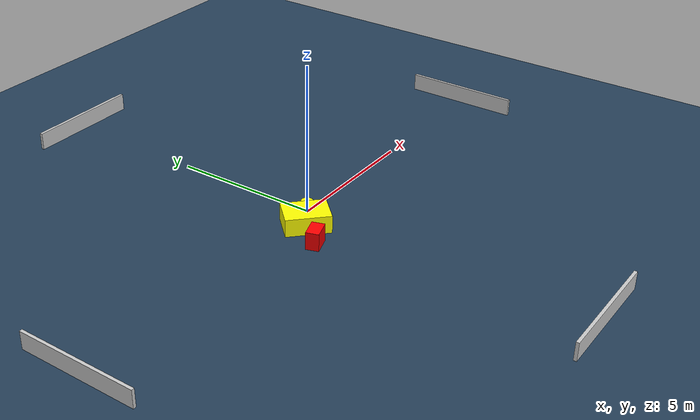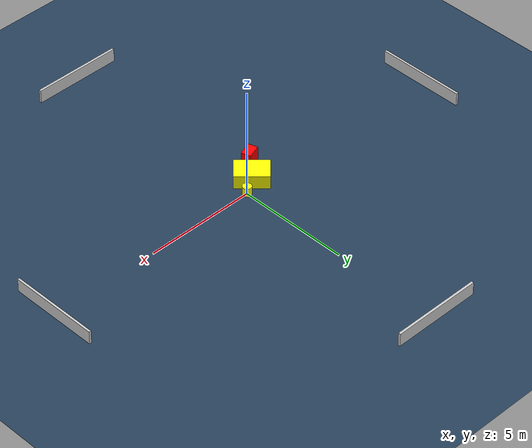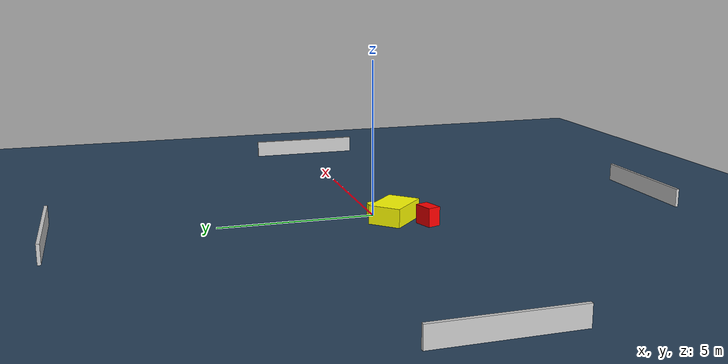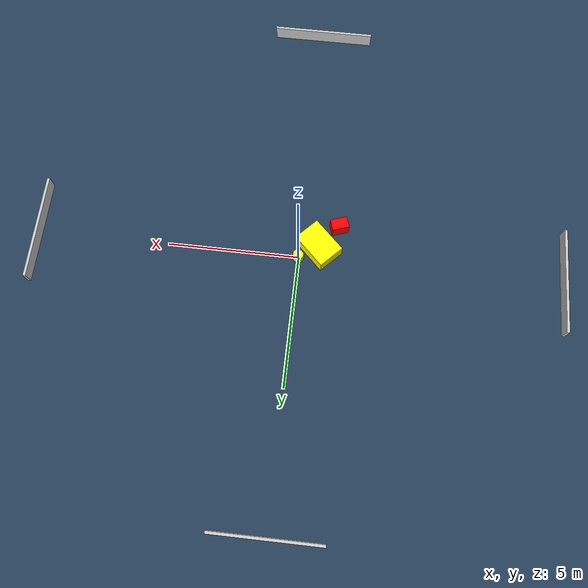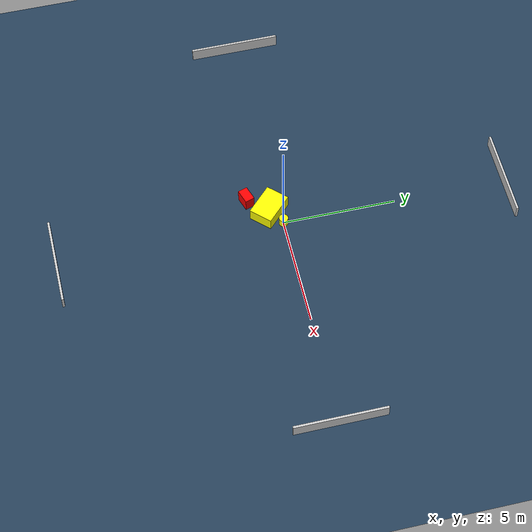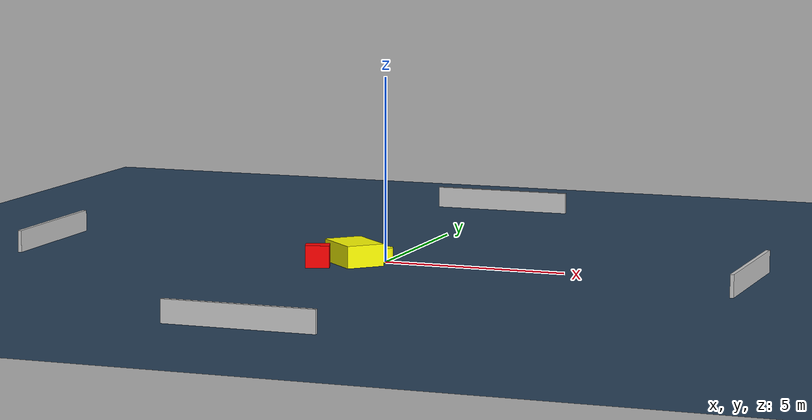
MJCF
<?xml version="1.0" ?>
<mujoco model="generated_environment">
  <option timestep="0.01" integrator="RK4" cone="elliptic"/>
  <default>
    <geom density="1"/>
  </default>
  <asset>
    <texture builtin="gradient" height="3072" name="skybox" rgb1="0.3 0.5 0.7" rgb2="0 0 0" type="skybox" width="512"/>
    <texture builtin="checker" height="300" name="groundplane" rgb1="0.2 0.3 0.4" rgb2="0.1 0.2 0.3" type="2d" width="300"/>
    <material name="groundplane" reflectance="0.2" texrepeat="5 5" texture="groundplane"/>
  </asset>
  <worldbody>
    <light dir="0 0 -1" directional="true" pos="0 0 1.5"/>
    <geom condim="3" friction="0.5 0.005 0.001" material="groundplane" name="floor" pos="0 0 0" size="0 0 0.05" type="plane"/>
    <body name="walls">
      <geom name="wall_1" condim="4" pos="-10.0 0.0 0.3" rgba="0.800000011920929 0.800000011920929 0.800000011920929 1.0" size="0.05 2.0 0.3" type="box"/>
      <geom name="wall_2" condim="4" pos="10.0 0.0 0.3" rgba="0.800000011920929 0.800000011920929 0.800000011920929 1.0" size="0.05 2.0 0.3" type="box"/>
      <geom name="wall_3" condim="4" pos="0.0 -10.0 0.3" rgba="0.800000011920929 0.800000011920929 0.800000011920929 1.0" size="2.0 0.05 0.3" type="box"/>
      <geom name="wall_4" condim="4" pos="0.0 10.0 0.3" rgba="0.800000011920929 0.800000011920929 0.800000011920929 1.0" size="2.0 0.05 0.3" type="box"/>
    </body>
    <body name="robot">
      <joint name="joint_x" type="slide" pos="0 0 0" axis="1 0 0"/>
      <joint name="joint_y" type="slide" pos="0 0 0" axis="0 1 0"/>
      <geom name="robot" type="cylinder" pos="0.0 0.0 0.2" size="0.2 0.2 0.0" mass="5.0" friction="1.0 0.005 0.0001" condim="4" rgba="1.0 1.0 0.0 1.0"/>
    </body>
    <body name="obstacle_1_movable">
      <geom name="obstacle_1_movable" condim="4" pos="-0.7331007891649811 -0.47639347393172876 0.3" euler="0 0 315.8413611140055" friction="0.0 0.005 0.001" rgba="1.0 1.0 0.0 1.0" size="0.7367679888024938 0.5296987077756693 0.3" type="box" mass="0.1"/>
      <joint type="free"/>
    </body>
    <body name="obstacle_2_static">
      <geom name="obstacle_2_static" condim="4" pos="-1.4425105108894858 -1.341406562865108 0.3" euler="0 0 198.25283271964122" friction="0.0 0.005 0.001" rgba="1.0 0.0 0.0 1.0" size="0.32364166097377145 0.2128386068800524 0.3" type="box"/>
    </body>
  </worldbody>
  <actuator>
    <motor name="actuator_x" joint="joint_x" gear="1" ctrlrange="-1 1"/>
    <motor name="actuator_y" joint="joint_y" gear="1" ctrlrange="-1 1"/>
  </actuator>
</mujoco>
